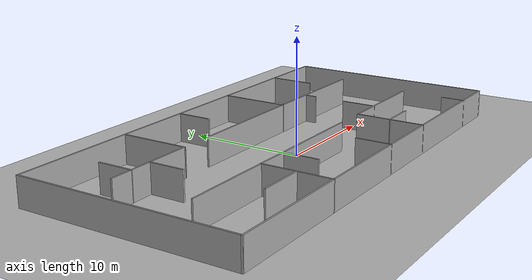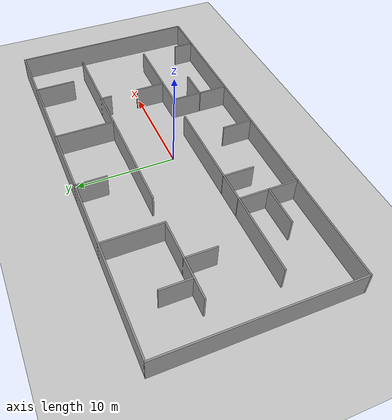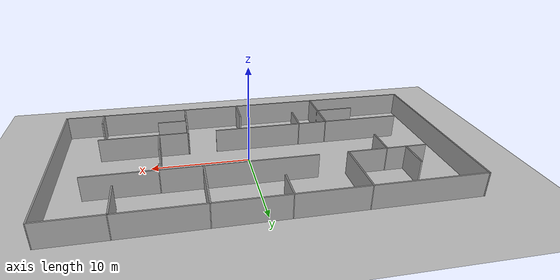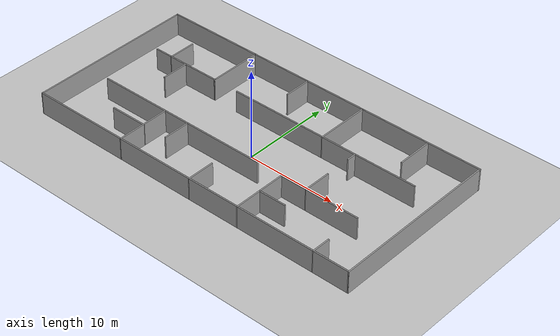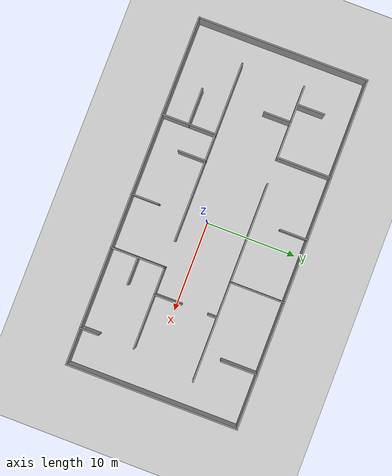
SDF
<sdf version="1.6">
 <world name="default">
  <light name="sun" type="directional">
   <pose>0 0 10 0 -0 0</pose>
   <diffuse>0.8 0.8 0.8 1</diffuse>
   <specular>0.1 0.1 0.1 1</specular>
   <attenuation>
    <range>1000</range>
    <constant>0.9</constant>
    <linear>0.01</linear>
    <quadratic>0.001</quadratic>
   </attenuation>
   <direction>-0.5 0.5 -1</direction>
  </light>
  <model name="ground_plane">
   <static>1</static>
   <link name="link">
    <collision name="collision">
     <geometry><plane><normal>0 0 1</normal><size>100 100</size></plane></geometry>
     <surface><friction><ode><mu>100</mu><mu2>50</mu2></ode></friction></surface>
    </collision>
    <visual name="visual">
     <cast_shadows>0</cast_shadows>
     <geometry><plane><normal>0 0 1</normal><size>100 100</size></plane></geometry>
     <material>
      <script><uri>file://media/materials/scripts/gazebo.material</uri><name>Gazebo/Grey</name></script>
     </material>
    </visual>
   </link>
  </model>
  <gravity>0 0 -9.8</gravity>
  <magnetic_field>6e-06 2.3e-05 -4.2e-05</magnetic_field>
  <atmosphere type="adiabatic"/>
  <physics name="default_physics" default="0" type="ode">
   <max_step_size>0.001</max_step_size>
   <real_time_factor>1</real_time_factor>
   <real_time_update_rate>1000</real_time_update_rate>
  </physics>
  <scene><ambient>0.4 0.4 0.4 1</ambient><background>0.7 0.7 0.7 1</background><shadows>1</shadows></scene>
  <spherical_coordinates>
   <surface_model>EARTH_WGS84</surface_model>
   <latitude_deg>0</latitude_deg>
   <longitude_deg>0</longitude_deg>
   <elevation>0</elevation>
   <heading_deg>0</heading_deg>
  </spherical_coordinates>
  <model name="test">
   <link name="Wall_0">
    <collision name="Wall_0_Collision">
     <geometry><box><size>39.15 0.15 2.5</size></box></geometry>
     <pose>0 0 1.25 0 -0 0</pose>
    </collision>
    <visual name="Wall_0_Visual">
     <pose>0 0 1.25 0 -0 0</pose>
     <geometry><box><size>39.15 0.15 2.5</size></box></geometry>
     <material>
      <script><uri>file://media/materials/scripts/gazebo.material</uri><name>Gazebo/Grey</name></script>
      <ambient>1 1 1 1</ambient>
     </material>
    </visual>
    <pose>-0.50 10.50 0 0 -0 0.00</pose>
   </link>
   <link name="Wall_1">
    <collision name="Wall_1_Collision">
     <geometry><box><size>8.15 0.15 2.5</size></box></geometry>
     <pose>0 0 1.25 0 -0 0</pose>
    </collision>
    <visual name="Wall_1_Visual">
     <pose>0 0 1.25 0 -0 0</pose>
     <geometry><box><size>8.15 0.15 2.5</size></box></geometry>
     <material>
      <script><uri>file://media/materials/scripts/gazebo.material</uri><name>Gazebo/Grey</name></script>
      <ambient>1 1 1 1</ambient>
     </material>
    </visual>
    <pose>-13.00 4.50 0 0 -0 0.00</pose>
   </link>
   <link name="Wall_2">
    <collision name="Wall_2_Collision">
     <geometry><box><size>22.15 0.15 2.5</size></box></geometry>
     <pose>0 0 1.25 0 -0 0</pose>
    </collision>
    <visual name="Wall_2_Visual">
     <pose>0 0 1.25 0 -0 0</pose>
     <geometry><box><size>22.15 0.15 2.5</size></box></geometry>
     <material>
      <script><uri>file://media/materials/scripts/gazebo.material</uri><name>Gazebo/Grey</name></script>
      <ambient>1 1 1 1</ambient>
     </material>
    </visual>
    <pose>5.00 4.50 0 0 -0 0.00</pose>
   </link>
   <link name="Wall_3">
    <collision name="Wall_3_Collision">
     <geometry><box><size>20.15 0.15 2.5</size></box></geometry>
     <pose>0 0 1.25 0 -0 0</pose>
    </collision>
    <visual name="Wall_3_Visual">
     <pose>0 0 1.25 0 -0 0</pose>
     <geometry><box><size>20.15 0.15 2.5</size></box></geometry>
     <material>
      <script><uri>file://media/materials/scripts/gazebo.material</uri><name>Gazebo/Grey</name></script>
      <ambient>1 1 1 1</ambient>
     </material>
    </visual>
    <pose>-7.00 -2.50 0 0 -0 0.00</pose>
   </link>
   <link name="Wall_4">
    <collision name="Wall_4_Collision">
     <geometry><box><size>9.15 0.15 2.5</size></box></geometry>
     <pose>0 0 1.25 0 -0 0</pose>
    </collision>
    <visual name="Wall_4_Visual">
     <pose>0 0 1.25 0 -0 0</pose>
     <geometry><box><size>9.15 0.15 2.5</size></box></geometry>
     <material>
      <script><uri>file://media/materials/scripts/gazebo.material</uri><name>Gazebo/Grey</name></script>
      <ambient>1 1 1 1</ambient>
     </material>
    </visual>
    <pose>10.50 -2.50 0 0 -0 0.00</pose>
   </link>
   <link name="Wall_5">
    <collision name="Wall_5_Collision">
     <geometry><box><size>4.15 0.15 2.5</size></box></geometry>
     <pose>0 0 1.25 0 -0 0</pose>
    </collision>
    <visual name="Wall_5_Visual">
     <pose>0 0 1.25 0 -0 0</pose>
     <geometry><box><size>4.15 0.15 2.5</size></box></geometry>
     <material>
      <script><uri>file://media/materials/scripts/gazebo.material</uri><name>Gazebo/Grey</name></script>
      <ambient>1 1 1 1</ambient>
     </material>
    </visual>
    <pose>-11.00 -5.50 0 0 -0 0.00</pose>
   </link>
   <link name="Wall_6">
    <collision name="Wall_6_Collision">
     <geometry><box><size>3.15 0.15 2.5</size></box></geometry>
     <pose>0 0 1.25 0 -0 0</pose>
    </collision>
    <visual name="Wall_6_Visual">
     <pose>0 0 1.25 0 -0 0</pose>
     <geometry><box><size>3.15 0.15 2.5</size></box></geometry>
     <material>
      <script><uri>file://media/materials/scripts/gazebo.material</uri><name>Gazebo/Grey</name></script>
      <ambient>1 1 1 1</ambient>
     </material>
    </visual>
    <pose>7.50 -5.50 0 0 -0 0.00</pose>
   </link>
   <link name="Wall_7">
    <collision name="Wall_7_Collision">
     <geometry><box><size>39.15 0.15 2.5</size></box></geometry>
     <pose>0 0 1.25 0 -0 0</pose>
    </collision>
    <visual name="Wall_7_Visual">
     <pose>0 0 1.25 0 -0 0</pose>
     <geometry><box><size>39.15 0.15 2.5</size></box></geometry>
     <material>
      <script><uri>file://media/materials/scripts/gazebo.material</uri><name>Gazebo/Grey</name></script>
      <ambient>1 1 1 1</ambient>
     </material>
    </visual>
    <pose>-0.50 -8.50 0 0 -0 0.00</pose>
   </link>
   <link name="Wall_8">
    <collision name="Wall_8_Collision">
     <geometry><box><size>19.15 0.15 2.5</size></box></geometry>
     <pose>0 0 1.25 0 -0 0</pose>
    </collision>
    <visual name="Wall_8_Visual">
     <pose>0 0 1.25 0 -0 0</pose>
     <geometry><box><size>19.15 0.15 2.5</size></box></geometry>
     <material>
      <script><uri>file://media/materials/scripts/gazebo.material</uri><name>Gazebo/Grey</name></script>
      <ambient>1 1 1 1</ambient>
     </material>
    </visual>
    <pose>-20.00 1.00 0 0 -0 -1.57</pose>
   </link>
   <link name="Wall_9">
    <collision name="Wall_9_Collision">
     <geometry><box><size>3.15 0.15 2.5</size></box></geometry>
     <pose>0 0 1.25 0 -0 0</pose>
    </collision>
    <visual name="Wall_9_Visual">
     <pose>0 0 1.25 0 -0 0</pose>
     <geometry><box><size>3.15 0.15 2.5</size></box></geometry>
     <material>
      <script><uri>file://media/materials/scripts/gazebo.material</uri><name>Gazebo/Grey</name></script>
      <ambient>1 1 1 1</ambient>
     </material>
    </visual>
    <pose>-15.00 6.00 0 0 -0 -1.57</pose>
   </link>
   <link name="Wall_10">
    <collision name="Wall_10_Collision">
     <geometry><box><size>3.15 0.15 2.5</size></box></geometry>
     <pose>0 0 1.25 0 -0 0</pose>
    </collision>
    <visual name="Wall_10_Visual">
     <pose>0 0 1.25 0 -0 0</pose>
     <geometry><box><size>3.15 0.15 2.5</size></box></geometry>
     <material>
      <script><uri>file://media/materials/scripts/gazebo.material</uri><name>Gazebo/Grey</name></script>
      <ambient>1 1 1 1</ambient>
     </material>
    </visual>
    <pose>-13.00 3.00 0 0 -0 -1.57</pose>
   </link>
   <link name="Wall_11">
    <collision name="Wall_11_Collision">
     <geometry><box><size>6.15 0.15 2.5</size></box></geometry>
     <pose>0 0 1.25 0 -0 0</pose>
    </collision>
    <visual name="Wall_11_Visual">
     <pose>0 0 1.25 0 -0 0</pose>
     <geometry><box><size>6.15 0.15 2.5</size></box></geometry>
     <material>
      <script><uri>file://media/materials/scripts/gazebo.material</uri><name>Gazebo/Grey</name></script>
      <ambient>1 1 1 1</ambient>
     </material>
    </visual>
    <pose>-9.00 7.50 0 0 -0 -1.57</pose>
   </link>
   <link name="Wall_12">
    <collision name="Wall_12_Collision">
     <geometry><box><size>6.15 0.15 2.5</size></box></geometry>
     <pose>0 0 1.25 0 -0 0</pose>
    </collision>
    <visual name="Wall_12_Visual">
     <pose>0 0 1.25 0 -0 0</pose>
     <geometry><box><size>6.15 0.15 2.5</size></box></geometry>
     <material>
      <script><uri>file://media/materials/scripts/gazebo.material</uri><name>Gazebo/Grey</name></script>
      <ambient>1 1 1 1</ambient>
     </material>
    </visual>
    <pose>-9.00 -5.50 0 0 -0 -1.57</pose>
   </link>
   <link name="Wall_13">
    <collision name="Wall_13_Collision">
     <geometry><box><size>3.15 0.15 2.5</size></box></geometry>
     <pose>0 0 1.25 0 -0 0</pose>
    </collision>
    <visual name="Wall_13_Visual">
     <pose>0 0 1.25 0 -0 0</pose>
     <geometry><box><size>3.15 0.15 2.5</size></box></geometry>
     <material>
      <script><uri>file://media/materials/scripts/gazebo.material</uri><name>Gazebo/Grey</name></script>
      <ambient>1 1 1 1</ambient>
     </material>
    </visual>
    <pose>-6.00 -4.00 0 0 -0 -1.57</pose>
   </link>
   <link name="Wall_14">
    <collision name="Wall_14_Collision">
     <geometry><box><size>3.15 0.15 2.5</size></box></geometry>
     <pose>0 0 1.25 0 -0 0</pose>
    </collision>
    <visual name="Wall_14_Visual">
     <pose>0 0 1.25 0 -0 0</pose>
     <geometry><box><size>3.15 0.15 2.5</size></box></geometry>
     <material>
      <script><uri>file://media/materials/scripts/gazebo.material</uri><name>Gazebo/Grey</name></script>
      <ambient>1 1 1 1</ambient>
     </material>
    </visual>
    <pose>-2.00 9.00 0 0 -0 -1.57</pose>
   </link>
   <link name="Wall_15">
    <collision name="Wall_15_Collision">
     <geometry><box><size>3.15 0.15 2.5</size></box></geometry>
     <pose>0 0 1.25 0 -0 0</pose>
    </collision>
    <visual name="Wall_15_Visual">
     <pose>0 0 1.25 0 -0 0</pose>
     <geometry><box><size>3.15 0.15 2.5</size></box></geometry>
     <material>
      <script><uri>file://media/materials/scripts/gazebo.material</uri><name>Gazebo/Grey</name></script>
      <ambient>1 1 1 1</ambient>
     </material>
    </visual>
    <pose>0.00 -7.00 0 0 -0 -1.57</pose>
   </link>
   <link name="Wall_16">
    <collision name="Wall_16_Collision">
     <geometry><box><size>6.15 0.15 2.5</size></box></geometry>
     <pose>0 0 1.25 0 -0 0</pose>
    </collision>
    <visual name="Wall_16_Visual">
     <pose>0 0 1.25 0 -0 0</pose>
     <geometry><box><size>6.15 0.15 2.5</size></box></geometry>
     <material>
      <script><uri>file://media/materials/scripts/gazebo.material</uri><name>Gazebo/Grey</name></script>
      <ambient>1 1 1 1</ambient>
     </material>
    </visual>
    <pose>5.00 7.50 0 0 -0 -1.57</pose>
   </link>
   <link name="Wall_17">
    <collision name="Wall_17_Collision">
     <geometry><box><size>6.15 0.15 2.5</size></box></geometry>
     <pose>0 0 1.25 0 -0 0</pose>
    </collision>
    <visual name="Wall_17_Visual">
     <pose>0 0 1.25 0 -0 0</pose>
     <geometry><box><size>6.15 0.15 2.5</size></box></geometry>
     <material>
      <script><uri>file://media/materials/scripts/gazebo.material</uri><name>Gazebo/Grey</name></script>
      <ambient>1 1 1 1</ambient>
     </material>
    </visual>
    <pose>6.00 -5.50 0 0 -0 -1.57</pose>
   </link>
   <link name="Wall_18">
    <collision name="Wall_18_Collision">
     <geometry><box><size>1.15 0.15 2.5</size></box></geometry>
     <pose>0 0 1.25 0 -0 0</pose>
    </collision>
    <visual name="Wall_18_Visual">
     <pose>0 0 1.25 0 -0 0</pose>
     <geometry><box><size>1.15 0.15 2.5</size></box></geometry>
     <material>
      <script><uri>file://media/materials/scripts/gazebo.material</uri><name>Gazebo/Grey</name></script>
      <ambient>1 1 1 1</ambient>
     </material>
    </visual>
    <pose>9.00 4.00 0 0 -0 -1.57</pose>
   </link>
   <link name="Wall_19">
    <collision name="Wall_19_Collision">
     <geometry><box><size>3.15 0.15 2.5</size></box></geometry>
     <pose>0 0 1.25 0 -0 0</pose>
    </collision>
    <visual name="Wall_19_Visual">
     <pose>0 0 1.25 0 -0 0</pose>
     <geometry><box><size>3.15 0.15 2.5</size></box></geometry>
     <material>
      <script><uri>file://media/materials/scripts/gazebo.material</uri><name>Gazebo/Grey</name></script>
      <ambient>1 1 1 1</ambient>
     </material>
    </visual>
    <pose>9.00 -1.00 0 0 -0 -1.57</pose>
   </link>
   <link name="Wall_20">
    <collision name="Wall_20_Collision">
     <geometry><box><size>4.15 0.15 2.5</size></box></geometry>
     <pose>0 0 1.25 0 -0 0</pose>
    </collision>
    <visual name="Wall_20_Visual">
     <pose>0 0 1.25 0 -0 0</pose>
     <geometry><box><size>4.15 0.15 2.5</size></box></geometry>
     <material>
      <script><uri>file://media/materials/scripts/gazebo.material</uri><name>Gazebo/Grey</name></script>
      <ambient>1 1 1 1</ambient>
     </material>
    </visual>
    <pose>13.00 8.50 0 0 -0 -1.57</pose>
   </link>
   <link name="Wall_21">
    <collision name="Wall_21_Collision">
     <geometry><box><size>2.15 0.15 2.5</size></box></geometry>
     <pose>0 0 1.25 0 -0 0</pose>
    </collision>
    <visual name="Wall_21_Visual">
     <pose>0 0 1.25 0 -0 0</pose>
     <geometry><box><size>2.15 0.15 2.5</size></box></geometry>
     <material>
      <script><uri>file://media/materials/scripts/gazebo.material</uri><name>Gazebo/Grey</name></script>
      <ambient>1 1 1 1</ambient>
     </material>
    </visual>
    <pose>15.00 -7.50 0 0 -0 -1.57</pose>
   </link>
   <link name="Wall_22">
    <collision name="Wall_22_Collision">
     <geometry><box><size>19.15 0.15 2.5</size></box></geometry>
     <pose>0 0 1.25 0 -0 0</pose>
    </collision>
    <visual name="Wall_22_Visual">
     <pose>0 0 1.25 0 -0 0</pose>
     <geometry><box><size>19.15 0.15 2.5</size></box></geometry>
     <material>
      <script><uri>file://media/materials/scripts/gazebo.material</uri><name>Gazebo/Grey</name></script>
      <ambient>1 1 1 1</ambient>
     </material>
    </visual>
    <pose>19.00 1.00 0 0 -0 -1.57</pose>
   </link>
   <static>1</static>
  </model>
 </world>
</sdf>
